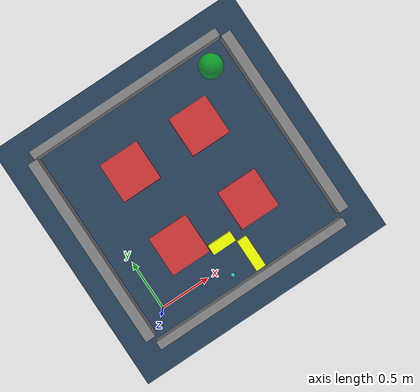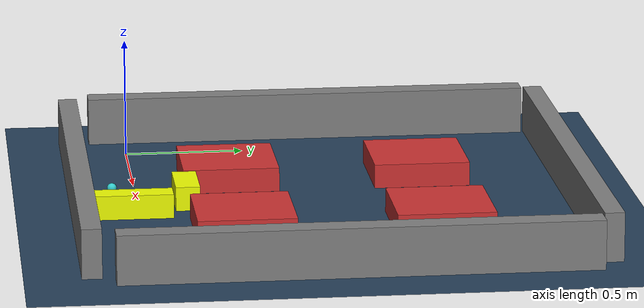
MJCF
<mujoco>
  <option timestep="0.01" integrator="RK4" />
  <worldbody>
    <light pos="0 0 1.5" dir="0 0 -1" directional="true" />
    <geom name="floor" size="0 0 0.05" type="plane" material="groundplane" friction=".5 0.005 0.001"
      priority="2" condim="4" />
  </worldbody>

  <worldbody>

    <body name="ball" pos=".7 -0.1 .05">
      <geom name="gball_0" type="sphere" size="0.02" mass="5." material="BallMat"
        friction=".5 0.005 0.001 " condim="4" />
      <site name="sensor_ball" />
      <joint name="joint_x" type="slide" pos="0 0 0" axis="1 0 0" />
      <joint name="joint_y" type="slide" pos="0 0 0" axis="0 1 0" />
    </body>

    <body name="wall_1" pos="0.45 0.4 .05">
      <geom name="wall_1" type="box" size="0.2 0.2 0.05" mass=".1" material="static" condim="4" />

    </body>

    <body name="wall_2" pos="0.45 1.2 .05">
      <geom name="wall_2" type="box" size="0.2 0.2 0.05" mass=".1" material="static" condim="4" />
    </body>

    <body name="wall_3" pos="1.2 0.4 .05">
      <geom name="wall_3" type="box" size="0.2 0.2 0.05" mass=".1" material="static" condim="4" />
    </body>

    <body name="wall_4" pos="1.2 1.2 .05">
      <geom name="wall_4" type="box" size="0.2 0.2 0.05" mass=".1" material="static" condim="4" />
    </body>

    <body name="movable_cube1" pos="0.95 -0.025 .05" euler="0 0 0">
      <joint type="hinge" axis="0 0 1" pos="0 0.16 0"/>
      <geom name="movable_cube1" type="box" size="0.05 0.16 0.05" mass=".05" material="movable"
        condim="4" />
    </body>

    <body name="movable_cube2" pos="0.78 0.2 .05" euler="0 0 90">
      <joint type="hinge" axis="0 0 1" pos="0 -0.14 0"/>
      <geom name="movable_cube2" type="box" size="0.05 0.12 0.05" mass=".05" material="movable"
        condim="4" />
    </body>

    <body name="case" pos="0 0 0.1">
      <geom name="gcase_a" type="box" size="0.05 0.95 0.1" pos="-.225 0.8 0" />
      <geom name="gcase_b" type="box" size="0.05 0.95 0.1" pos="1.85 0.8 0" />
      <geom name="gcase_c" type="box" size="1. 0.04 0.1" pos="0.8 1.8 0" />
      <geom name="gcase_d" type="box" size="1. 0.04 0.1" pos="0.8 -.24 0" />
    </body>

    <site name="target" pos="1.6 1.6 0.0" size="0.12" rgba="0 1 0 0.5" />

  </worldbody>

  <actuator>
    <motor name="actuator_x" joint="joint_x" gear="1" />
    <motor name="actuator_y" joint="joint_y" gear="1" />
  </actuator>

  <asset>
    <!-- Materials for visualization -->
    <material name="MatPlane" rgba="0.8 0.9 0.8 1" />
    <material name="movable" rgba="0.94 1.0 0.0 1" />
    <material name="static" rgba="0.8 0.2 0.2 1" />
    <material name="BallMat" rgba="0.2 0.8 0.8 1" />

    <texture type="skybox" builtin="gradient" rgb1="0.3 0.5 0.7" rgb2="0 0 0" width="512"
      height="3072" />
    <texture type="2d" name="groundplane" builtin="checker" mark="edge" rgb1="0.2 0.3 0.4"
      rgb2="0.1 0.2 0.3"
      markrgb="0.8 0.8 0.8" width="300" height="300" />
    <material name="groundplane" texture="groundplane" texuniform="true" texrepeat="5 5"
      reflectance="0.2" />
  </asset>

  <visual>
    <headlight diffuse="0.6 0.6 0.6" ambient="0.3 0.3 0.3" specular="0 0 0" />
    <rgba haze="0.15 0.25 0.35 1" />
    <global azimuth="60" elevation="-20" />
  </visual>

  <sensor>
    <velocimeter name="sensor_ball" site="sensor_ball" />
  </sensor>

</mujoco>
